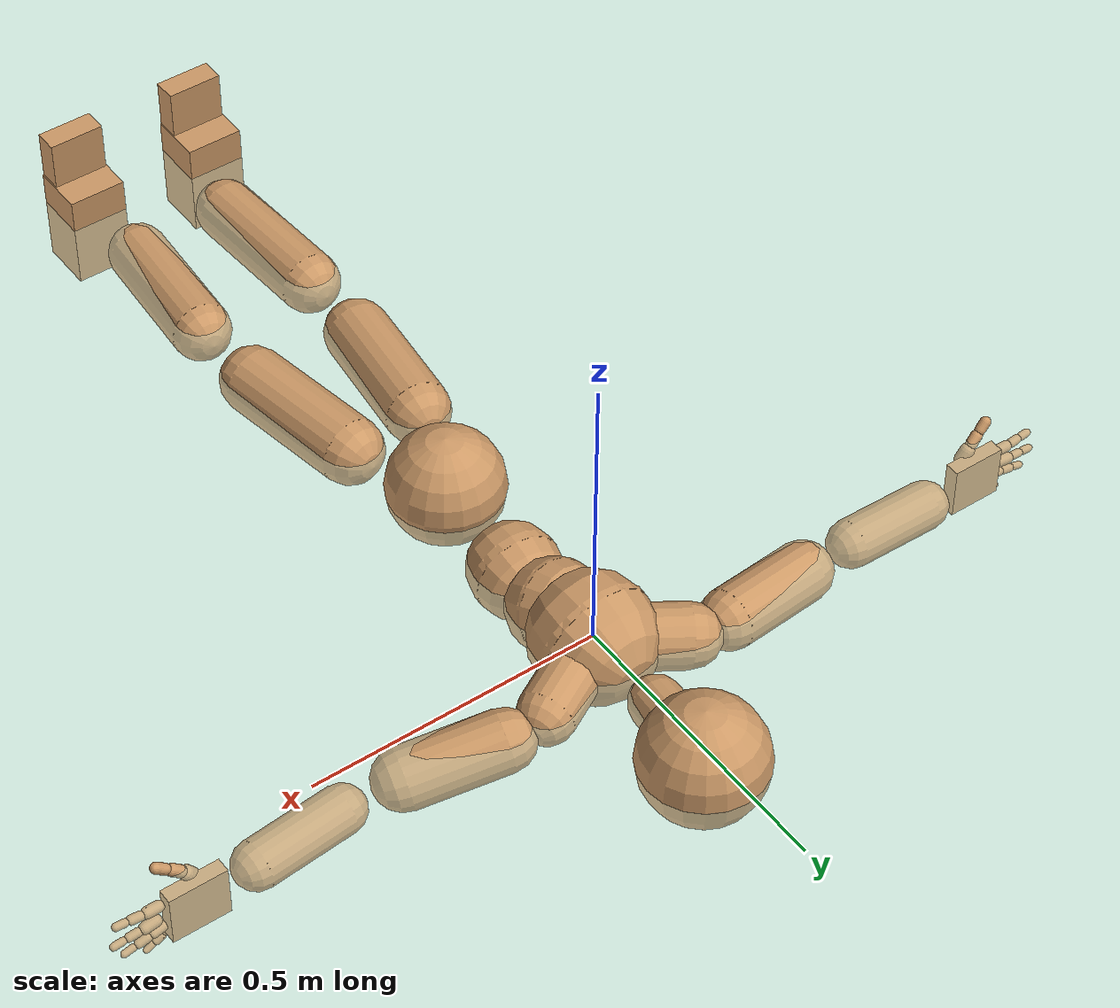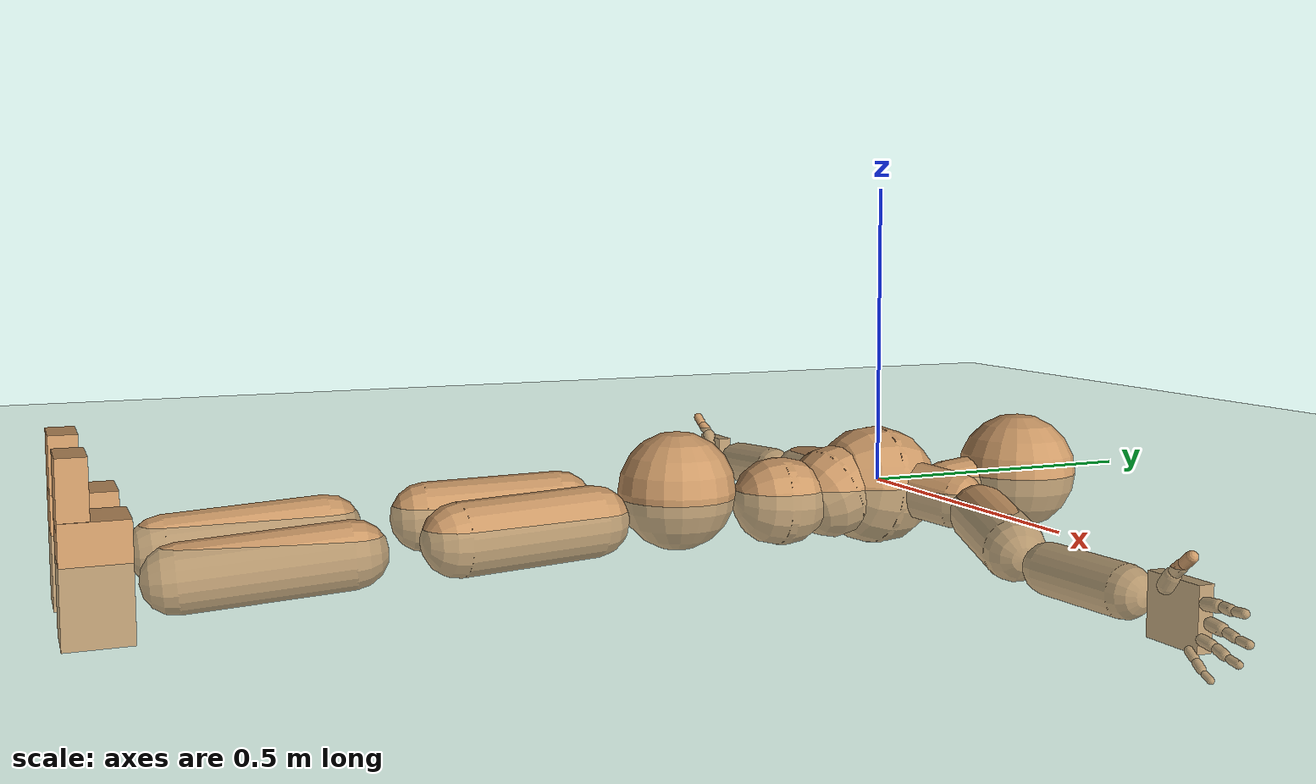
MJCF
<mujoco model="humanoid">
  <compiler coordinate="local"/>
  <default>
    <joint damping="0.0" armature="0.01" stiffness="0.0" limited="true"/>
    <geom conaffinity="1" condim="3" contype="7" margin="0.001" rgba="0.8 0.6 .4 1"/>
  </default>
  <asset>
    <texture type="skybox" builtin="gradient" rgb1=".4 .5 .6" rgb2="0 0 0" width="100" height="100"/>
    <texture builtin="flat" height="1278" mark="cross" markrgb="1 1 1" name="texgeom" random="0.01" rgb1="0.8 0.6 0.4" rgb2="0.8 0.6 0.4" type="cube" width="127"/>
    <texture builtin="checker" height="100" name="texplane" rgb1="0 0 0" rgb2="0.8 0.8 0.8" type="2d" width="100"/>
    <material name="MatPlane" reflectance="0.5" shininess="1" specular="1" texrepeat="60 60" texture="texplane"/>
    <material name="geom" texture="texgeom" texuniform="true"/>
  </asset>
  <worldbody>
    <light cutoff="100" diffuse="1 1 1" dir="-0 0 -1.3" directional="true" exponent="1" pos="0 0 1.3" specular=".1 .1 .1"/>
    <geom conaffinity="1" condim="3" name="floor" pos="0 0 0" rgba="0.8 0.9 0.8 1" size="100 100 .2" type="plane" material="MatPlane"/>
    <body name="Pelvis" pos="0.0027 -0.3825 0.0077">
      <freejoint name="Pelvis"/>
      <geom type="sphere" contype="1" conaffinity="1" density="4629.6296296296305" size="0.0973" pos="0.0000 0.0000 0.0000" name="Pelvis"/>
      <body name="L_Hip" pos="0.0543 -0.0955 -0.0248">
        <joint name="L_Hip_x" type="hinge" pos="0 0 0" axis="1 0 0" user="250 2.5 1 500 10 2" armature="0.01" range="-90.0000 90.0000" damping="0" stiffness="0"/>
        <joint name="L_Hip_y" type="hinge" pos="0 0 0" axis="0 1 0" user="250 2.5 1 500 10 2" armature="0.01" range="-90.0000 90.0000" damping="0" stiffness="0"/>
        <joint name="L_Hip_z" type="hinge" pos="0 0 0" axis="0 0 1" user="250 2.5 1 500 10 2" armature="0.01" range="-90.0000 90.0000" damping="0" stiffness="0"/>
        <geom type="capsule" contype="1" conaffinity="1" density="2040.816327" fromto="0.0116 -0.0756 -0.0013 0.0466 -0.3026 -0.0051" size="0.0566" name="L_Hip"/>
        <body name="L_Knee" pos="0.0582 -0.3782 -0.0064">
          <joint name="L_Knee_x" type="hinge" pos="0 0 0" axis="1 0 0" user="250 2.5 1 500 10 2" armature="0.01" range="-180.0000 180.0000" damping="0" stiffness="0"/>
          <joint name="L_Knee_y" type="hinge" pos="0 0 0" axis="0 1 0" user="250 2.5 1 500 10 2" armature="0.01" range="-5.6250 5.6250" damping="0" stiffness="0"/>
          <joint name="L_Knee_z" type="hinge" pos="0 0 0" axis="0 0 1" user="250 2.5 1 500 10 2" armature="0.01" range="-5.6250 5.6250" damping="0" stiffness="0"/>
          <geom type="capsule" contype="1" conaffinity="1" density="1234.567901" fromto="-0.0082 -0.0805 -0.0061 -0.0327 -0.3219 -0.0242" size="0.0512" name="L_Knee"/>
          <body name="L_Ankle" pos="-0.0409 -0.4023 -0.0303">
            <joint name="L_Ankle_x" type="hinge" pos="0 0 0" axis="1 0 0" user="150 2.5 1 500 10 2" armature="0.01" range="-90.0000 90.0000" damping="0" stiffness="0"/>
            <joint name="L_Ankle_y" type="hinge" pos="0 0 0" axis="0 1 0" user="150 2.5 1 500 10 2" armature="0.01" range="-90.0000 90.0000" damping="0" stiffness="0"/>
            <joint name="L_Ankle_z" type="hinge" pos="0 0 0" axis="0 0 1" user="150 2.5 1 500 10 2" armature="0.01" range="-90.0000 90.0000" damping="0" stiffness="0"/>
            <geom type="box" density="447.149426" pos="0.0408 -0.0293 0.0248" size="0.0501 0.0473 0.0856" quat="1.0000 0.0000 0.0000 0.0000" name="L_Ankle"/>
            <body name="L_Toe" pos="0.0474 -0.0595 0.1199">
              <joint name="L_Toe_x" type="hinge" pos="0 0 0" axis="1 0 0" user="150 1 1 500 1 1" armature="0.01" range="-90.0000 90.0000" damping="0" stiffness="0"/>
              <joint name="L_Toe_y" type="hinge" pos="0 0 0" axis="0 1 0" user="150 1 1 500 1 1" armature="0.01" range="-45.0000 45.0000" damping="0" stiffness="0"/>
              <joint name="L_Toe_z" type="hinge" pos="0 0 0" axis="0 0 1" user="150 1 1 500 1 1" armature="0.01" range="-45.0000 45.0000" damping="0" stiffness="0"/>
              <geom type="box" density="424.313321" pos="-0.0066 0.0037 0.0262" size="0.0481 0.0208 0.0502" quat="1.0000 0.0000 0.0000 0.0000" name="L_Toe"/>
            </body>
          </body>
        </body>
      </body>
      <body name="R_Hip" pos="-0.0591 -0.1079 -0.0198">
        <joint name="R_Hip_x" type="hinge" pos="0 0 0" axis="1 0 0" user="250 2.5 1 500 10 2" armature="0.01" range="-90.0000 90.0000" damping="0" stiffness="0"/>
        <joint name="R_Hip_y" type="hinge" pos="0 0 0" axis="0 1 0" user="250 2.5 1 500 10 2" armature="0.01" range="-90.0000 90.0000" damping="0" stiffness="0"/>
        <joint name="R_Hip_z" type="hinge" pos="0 0 0" axis="0 0 1" user="250 2.5 1 500 10 2" armature="0.01" range="-90.0000 90.0000" damping="0" stiffness="0"/>
        <geom type="capsule" contype="1" conaffinity="1" density="2040.816327" fromto="-0.0096 -0.0721 -0.0028 -0.0383 -0.2883 -0.0110" size="0.0558" name="R_Hip"/>
        <body name="R_Knee" pos="-0.0478 -0.3603 -0.0138">
          <joint name="R_Knee_x" type="hinge" pos="0 0 0" axis="1 0 0" user="250 2.5 1 500 10 2" armature="0.01" range="-180.0000 180.0000" damping="0" stiffness="0"/>
          <joint name="R_Knee_y" type="hinge" pos="0 0 0" axis="0 1 0" user="250 2.5 1 500 10 2" armature="0.01" range="-5.6250 5.6250" damping="0" stiffness="0"/>
          <joint name="R_Knee_z" type="hinge" pos="0 0 0" axis="0 0 1" user="250 2.5 1 500 10 2" armature="0.01" range="-5.6250 5.6250" damping="0" stiffness="0"/>
          <geom type="capsule" contype="1" conaffinity="1" density="1234.567901" fromto="0.0027 -0.0821 -0.0038 0.0109 -0.3284 -0.0152" size="0.0527" name="R_Knee"/>
          <body name="R_Ankle" pos="0.0136 -0.4105 -0.019">
            <joint name="R_Ankle_x" type="hinge" pos="0 0 0" axis="1 0 0" user="150 1 1 500 10 2" armature="0.01" range="-90.0000 90.0000" damping="0" stiffness="0"/>
            <joint name="R_Ankle_y" type="hinge" pos="0 0 0" axis="0 1 0" user="150 1 1 500 10 2" armature="0.01" range="-90.0000 90.0000" damping="0" stiffness="0"/>
            <joint name="R_Ankle_z" type="hinge" pos="0 0 0" axis="0 0 1" user="150 1 1 500 10 2" armature="0.01" range="-90.0000 90.0000" damping="0" stiffness="0"/>
            <geom type="box" density="447.145262" pos="-0.0245 -0.0267 0.0158" size="0.0501 0.0473 0.0856" quat="1.0000 0.0000 0.0000 0.0000" name="R_Ankle"/>
            <body name="R_Toe" pos="-0.0391 -0.0597 0.1208">
              <joint name="R_Toe_x" type="hinge" pos="0 0 0" axis="1 0 0" user="150 1 1 500 1 1" armature="0.01" range="-90.0000 90.0000" damping="0" stiffness="0"/>
              <joint name="R_Toe_y" type="hinge" pos="0 0 0" axis="0 1 0" user="150 1 1 500 1 1" armature="0.01" range="-45.0000 45.0000" damping="0" stiffness="0"/>
              <joint name="R_Toe_z" type="hinge" pos="0 0 0" axis="0 0 1" user="150 1 1 500 1 1" armature="0.01" range="-45.0000 45.0000" damping="0" stiffness="0"/>
              <geom type="box" density="424.331132" pos="0.0147 0.0066 0.0163" size="0.0481 0.0208 0.0502" quat="1.0000 0.0000 0.0000 0.0000" name="R_Toe"/>
            </body>
          </body>
        </body>
      </body>
      <body name="Torso" pos="-0.0021 0.1145 -0.0283">
        <joint name="Torso_x" type="hinge" pos="0 0 0" axis="1 0 0" user="500 5 1 500 10 2" armature="0.01" range="-60.0000 60.0000" damping="0" stiffness="0"/>
        <joint name="Torso_y" type="hinge" pos="0 0 0" axis="0 1 0" user="500 5 1 500 10 2" armature="0.01" range="-60.0000 60.0000" damping="0" stiffness="0"/>
        <joint name="Torso_z" type="hinge" pos="0 0 0" axis="0 0 1" user="500 5 1 500 10 2" armature="0.01" range="-60.0000 60.0000" damping="0" stiffness="0"/>
        <geom type="capsule" contype="1" conaffinity="1" density="2040.816327" fromto="0.0040 0.0666 -0.0022 0.0049 0.0814 -0.0027" size="0.0737" name="Torso"/>
        <body name="Spine" pos="0.009 0.148 -0.0049">
          <joint name="Spine_x" type="hinge" pos="0 0 0" axis="1 0 0" user="500 5 1 500 10 2" armature="0.01" range="-60.0000 60.0000" damping="0" stiffness="0"/>
          <joint name="Spine_y" type="hinge" pos="0 0 0" axis="0 1 0" user="500 5 1 500 10 2" armature="0.01" range="-60.0000 60.0000" damping="0" stiffness="0"/>
          <joint name="Spine_z" type="hinge" pos="0 0 0" axis="0 0 1" user="500 5 1 500 10 2" armature="0.01" range="-60.0000 60.0000" damping="0" stiffness="0"/>
          <geom type="capsule" contype="1" conaffinity="1" density="2040.816327" fromto="-0.0050 0.0257 0.0106 -0.0061 0.0314 0.0129" size="0.077" name="Spine"/>
          <body name="Chest" pos="-0.0112 0.0572 0.0235">
            <joint name="Chest_x" type="hinge" pos="0 0 0" axis="1 0 0" user="500 5 1 500 10 2" armature="0.01" range="-60.0000 60.0000" damping="0" stiffness="0"/>
            <joint name="Chest_y" type="hinge" pos="0 0 0" axis="0 1 0" user="500 5 1 500 10 2" armature="0.01" range="-60.0000 60.0000" damping="0" stiffness="0"/>
            <joint name="Chest_z" type="hinge" pos="0 0 0" axis="0 0 1" user="500 5 1 500 10 2" armature="0.01" range="-60.0000 60.0000" damping="0" stiffness="0"/>
            <geom type="capsule" contype="1" conaffinity="1" density="2040.816327" fromto="-0.0019 0.0518 -0.0063 -0.0024 0.0633 -0.0077" size="0.101" name="Chest"/>
            <body name="Neck" pos="-0.0118 0.1709 -0.0256">
              <joint name="Neck_x" type="hinge" pos="0 0 0" axis="1 0 0" user="150 1 1 250 50 4" armature="0.01" range="-180.0000 180.0000" damping="0" stiffness="0"/>
              <joint name="Neck_y" type="hinge" pos="0 0 0" axis="0 1 0" user="150 1 1 250 50 4" armature="0.01" range="-180.0000 180.0000" damping="0" stiffness="0"/>
              <joint name="Neck_z" type="hinge" pos="0 0 0" axis="0 0 1" user="150 1 1 250 50 4" armature="0.01" range="-180.0000 180.0000" damping="0" stiffness="0"/>
              <geom type="capsule" contype="1" conaffinity="1" density="1000" fromto="0.0050 0.0348 0.0052 0.0199 0.1391 0.0209" size="0.0431" name="Neck"/>
              <body name="Head" pos="0.0248 0.1739 0.0261">
                <joint name="Head_x" type="hinge" pos="0 0 0" axis="1 0 0" user="150 1 1 250 50 4" armature="0.01" range="-90.0000 90.0000" damping="0" stiffness="0"/>
                <joint name="Head_y" type="hinge" pos="0 0 0" axis="0 1 0" user="150 1 1 250 50 4" armature="0.01" range="-90.0000 90.0000" damping="0" stiffness="0"/>
                <joint name="Head_z" type="hinge" pos="0 0 0" axis="0 0 1" user="150 1 1 250 50 4" armature="0.01" range="-90.0000 90.0000" damping="0" stiffness="0"/>
                <geom type="sphere" contype="1" conaffinity="1" density="1000" size="0.1027" pos="0.0000 0.0000 0.0000" name="Head"/>
              </body>
            </body>
            <body name="L_Thorax" pos="0.0455 0.0875 -0.0051">
              <joint name="L_Thorax_x" type="hinge" pos="0 0 0" axis="1 0 0" user="200 2 1 500 50 4" armature="0.01" range="-180.0000 180.0000" damping="0" stiffness="0"/>
              <joint name="L_Thorax_y" type="hinge" pos="0 0 0" axis="0 1 0" user="200 2 1 500 50 4" armature="0.01" range="-180.0000 180.0000" damping="0" stiffness="0"/>
              <joint name="L_Thorax_z" type="hinge" pos="0 0 0" axis="0 0 1" user="200 2 1 500 50 4" armature="0.01" range="-180.0000 180.0000" damping="0" stiffness="0"/>
              <geom type="capsule" contype="1" conaffinity="1" density="1000" fromto="0.0233 0.0114 -0.0031 0.0933 0.0455 -0.0125" size="0.0476" name="L_Thorax"/>
              <body name="L_Shoulder" pos="0.1166 0.0569 -0.0156">
                <joint name="L_Shoulder_x" type="hinge" pos="0 0 0" axis="1 0 0" user="200 2 1 500 50 4" armature="0.01" range="-180.0000 180.0000" damping="0" stiffness="0"/>
                <joint name="L_Shoulder_y" type="hinge" pos="0 0 0" axis="0 1 0" user="200 2 1 500 50 4" armature="0.01" range="-180.0000 180.0000" damping="0" stiffness="0"/>
                <joint name="L_Shoulder_z" type="hinge" pos="0 0 0" axis="0 0 1" user="200 2 1 500 50 4" armature="0.01" range="-180.0000 180.0000" damping="0" stiffness="0"/>
                <geom type="capsule" contype="1" conaffinity="1" density="1000" fromto="0.0501 -0.0143 -0.0079 0.2005 -0.0571 -0.0315" size="0.0498" name="L_Shoulder"/>
                <body name="L_Elbow" pos="0.2506 -0.0714 -0.0394">
                  <joint name="L_Elbow_x" type="hinge" pos="0 0 0" axis="1 0 0" user="150 1 1 150 10 2" armature="0.01" range="-720.0000 720.0000" damping="0" stiffness="0"/>
                  <joint name="L_Elbow_y" type="hinge" pos="0 0 0" axis="0 1 0" user="150 1 1 150 10 2" armature="0.01" range="-720.0000 720.0000" damping="0" stiffness="0"/>
                  <joint name="L_Elbow_z" type="hinge" pos="0 0 0" axis="0 0 1" user="150 1 1 150 10 2" armature="0.01" range="-720.0000 720.0000" damping="0" stiffness="0"/>
                  <geom type="capsule" contype="1" conaffinity="1" density="1000" fromto="0.0509 0.0042 -0.0003 0.2035 0.0170 -0.0013" size="0.0395" name="L_Elbow"/>
                  <body name="L_Wrist" pos="0.2544 0.0212 -0.0016">
                    <joint name="L_Wrist_x" type="hinge" pos="0 0 0" axis="1 0 0" user="100 1 1 150 1 1" armature="0.01" range="-180.0000 180.0000" damping="0" stiffness="0"/>
                    <joint name="L_Wrist_y" type="hinge" pos="0 0 0" axis="0 1 0" user="100 1 1 150 1 1" armature="0.01" range="-180.0000 180.0000" damping="0" stiffness="0"/>
                    <joint name="L_Wrist_z" type="hinge" pos="0 0 0" axis="0 0 1" user="100 1 1 150 1 1" armature="0.01" range="-180.0000 180.0000" damping="0" stiffness="0"/>
                    <geom type="box" density="1211.532379" pos="0.0529 -0.0016 -0.0029" size="0.0488 0.0124 0.0462" quat="1.0000 0.0000 0.0000 0.0000" name="L_Wrist"/>
                    <body name="L_Index1" pos="0.1028 -0.0086 0.0195">
                      <joint name="L_Index1_x" type="hinge" pos="0 0 0" axis="1 0 0" user="100 10 1 150" armature="0.01" range="-180.0000 180.0000" damping="0" stiffness="0"/>
                      <joint name="L_Index1_y" type="hinge" pos="0 0 0" axis="0 1 0" user="100 10 1 150" armature="0.01" range="-180.0000 180.0000" damping="0" stiffness="0"/>
                      <joint name="L_Index1_z" type="hinge" pos="0 0 0" axis="0 0 1" user="100 10 1 150" armature="0.01" range="-180.0000 180.0000" damping="0" stiffness="0"/>
                      <geom type="capsule" contype="1" conaffinity="1" density="1000" fromto="0.0064 0.0005 0.0006 0.0257 0.0018 0.0022" size="0.0093" name="L_Index1"/>
                      <body name="L_Index2" pos="0.0321 0.0023 0.0028">
                        <joint name="L_Index2_x" type="hinge" pos="0 0 0" axis="1 0 0" user="100 10 1 150" armature="0.01" range="-180.0000 180.0000" damping="0" stiffness="0"/>
                        <joint name="L_Index2_y" type="hinge" pos="0 0 0" axis="0 1 0" user="100 10 1 150" armature="0.01" range="-180.0000 180.0000" damping="0" stiffness="0"/>
                        <joint name="L_Index2_z" type="hinge" pos="0 0 0" axis="0 0 1" user="100 10 1 150" armature="0.01" range="-180.0000 180.0000" damping="0" stiffness="0"/>
                        <geom type="capsule" contype="1" conaffinity="1" density="1000" fromto="0.0045 -0.0005 -0.0000 0.0181 -0.0020 -0.0002" size="0.0077" name="L_Index2"/>
                        <body name="L_Index3" pos="0.0226 -0.0025 -0.0002">
                          <joint name="L_Index3_x" type="hinge" pos="0 0 0" axis="1 0 0" user="100 10 1 150" armature="0.01" range="-180.0000 180.0000" damping="0" stiffness="0"/>
                          <joint name="L_Index3_y" type="hinge" pos="0 0 0" axis="0 1 0" user="100 10 1 150" armature="0.01" range="-180.0000 180.0000" damping="0" stiffness="0"/>
                          <joint name="L_Index3_z" type="hinge" pos="0 0 0" axis="0 0 1" user="100 10 1 150" armature="0.01" range="-180.0000 180.0000" damping="0" stiffness="0"/>
                          <geom type="capsule" contype="1" conaffinity="1" density="1000" fromto="0.0049 -0.0001 0.0004 0.0197 -0.0004 0.0014" size="0.0065" name="L_Index3"/>
                        </body>
                      </body>
                    </body>
                    <body name="L_Middle1" pos="0.1104 -0.0064 -0.0041">
                      <joint name="L_Middle1_x" type="hinge" pos="0 0 0" axis="1 0 0" user="100 10 1 150" armature="0.01" range="-180.0000 180.0000" damping="0" stiffness="0"/>
                      <joint name="L_Middle1_y" type="hinge" pos="0 0 0" axis="0 1 0" user="100 10 1 150" armature="0.01" range="-180.0000 180.0000" damping="0" stiffness="0"/>
                      <joint name="L_Middle1_z" type="hinge" pos="0 0 0" axis="0 0 1" user="100 10 1 150" armature="0.01" range="-180.0000 180.0000" damping="0" stiffness="0"/>
                      <geom type="capsule" contype="1" conaffinity="1" density="1000" fromto="0.0061 0.0001 -0.0008 0.0246 0.0006 -0.0033" size="0.0095" name="L_Middle1"/>
                      <body name="L_Middle2" pos="0.0307 0.0007 -0.0041">
                        <joint name="L_Middle2_x" type="hinge" pos="0 0 0" axis="1 0 0" user="100 10 1 150" armature="0.01" range="-180.0000 180.0000" damping="0" stiffness="0"/>
                        <joint name="L_Middle2_y" type="hinge" pos="0 0 0" axis="0 1 0" user="100 10 1 150" armature="0.01" range="-180.0000 180.0000" damping="0" stiffness="0"/>
                        <joint name="L_Middle2_z" type="hinge" pos="0 0 0" axis="0 0 1" user="100 10 1 150" armature="0.01" range="-180.0000 180.0000" damping="0" stiffness="0"/>
                        <geom type="capsule" contype="1" conaffinity="1" density="1000" fromto="0.0047 -0.0004 -0.0008 0.0189 -0.0016 -0.0034" size="0.0071" name="L_Middle2"/>
                        <body name="L_Middle3" pos="0.0236 -0.002 -0.0042">
                          <joint name="L_Middle3_x" type="hinge" pos="0 0 0" axis="1 0 0" user="100 10 1 150" armature="0.01" range="-180.0000 180.0000" damping="0" stiffness="0"/>
                          <joint name="L_Middle3_y" type="hinge" pos="0 0 0" axis="0 1 0" user="100 10 1 150" armature="0.01" range="-180.0000 180.0000" damping="0" stiffness="0"/>
                          <joint name="L_Middle3_z" type="hinge" pos="0 0 0" axis="0 0 1" user="100 10 1 150" armature="0.01" range="-180.0000 180.0000" damping="0" stiffness="0"/>
                          <geom type="capsule" contype="1" conaffinity="1" density="1000" fromto="0.0051 -0.0000 -0.0004 0.0205 -0.0000 -0.0018" size="0.0062" name="L_Middle3"/>
                        </body>
                      </body>
                    </body>
                    <body name="L_Pinky1" pos="0.0853 -0.0146 -0.0439">
                      <joint name="L_Pinky1_x" type="hinge" pos="0 0 0" axis="1 0 0" user="100 10 1 150" armature="0.01" range="-180.0000 180.0000" damping="0" stiffness="0"/>
                      <joint name="L_Pinky1_y" type="hinge" pos="0 0 0" axis="0 1 0" user="100 10 1 150" armature="0.01" range="-180.0000 180.0000" damping="0" stiffness="0"/>
                      <joint name="L_Pinky1_z" type="hinge" pos="0 0 0" axis="0 0 1" user="100 10 1 150" armature="0.01" range="-180.0000 180.0000" damping="0" stiffness="0"/>
                      <geom type="capsule" contype="1" conaffinity="1" density="1000" fromto="0.0032 -0.0002 -0.0024 0.0128 -0.0009 -0.0095" size="0.0068" name="L_Pinky1"/>
                      <body name="L_Pinky2" pos="0.016 -0.0012 -0.0119">
                        <joint name="L_Pinky2_x" type="hinge" pos="0 0 0" axis="1 0 0" user="100 10 1 150" armature="0.01" range="-180.0000 180.0000" damping="0" stiffness="0"/>
                        <joint name="L_Pinky2_y" type="hinge" pos="0 0 0" axis="0 1 0" user="100 10 1 150" armature="0.01" range="-180.0000 180.0000" damping="0" stiffness="0"/>
                        <joint name="L_Pinky2_z" type="hinge" pos="0 0 0" axis="0 0 1" user="100 10 1 150" armature="0.01" range="-180.0000 180.0000" damping="0" stiffness="0"/>
                        <geom type="capsule" contype="1" conaffinity="1" density="1000" fromto="0.0032 -0.0004 -0.0022 0.0126 -0.0014 -0.0089" size="0.0065" name="L_Pinky2"/>
                        <body name="L_Pinky3" pos="0.0158 -0.0018 -0.0111">
                          <joint name="L_Pinky3_x" type="hinge" pos="0 0 0" axis="1 0 0" user="100 10 1 150" armature="0.01" range="-180.0000 180.0000" damping="0" stiffness="0"/>
                          <joint name="L_Pinky3_y" type="hinge" pos="0 0 0" axis="0 1 0" user="100 10 1 150" armature="0.01" range="-180.0000 180.0000" damping="0" stiffness="0"/>
                          <joint name="L_Pinky3_z" type="hinge" pos="0 0 0" axis="0 0 1" user="100 10 1 150" armature="0.01" range="-180.0000 180.0000" damping="0" stiffness="0"/>
                          <geom type="capsule" contype="1" conaffinity="1" density="1000" fromto="0.0036 0.0000 -0.0018 0.0142 0.0002 -0.0073" size="0.005" name="L_Pinky3"/>
                        </body>
                      </body>
                    </body>
                    <body name="L_Ring1" pos="0.0986 -0.0093 -0.0274">
                      <joint name="L_Ring1_x" type="hinge" pos="0 0 0" axis="1 0 0" user="100 10 1 150" armature="0.01" range="-180.0000 180.0000" damping="0" stiffness="0"/>
                      <joint name="L_Ring1_y" type="hinge" pos="0 0 0" axis="0 1 0" user="100 10 1 150" armature="0.01" range="-180.0000 180.0000" damping="0" stiffness="0"/>
                      <joint name="L_Ring1_z" type="hinge" pos="0 0 0" axis="0 0 1" user="100 10 1 150" armature="0.01" range="-180.0000 180.0000" damping="0" stiffness="0"/>
                      <geom type="capsule" contype="1" conaffinity="1" density="1000" fromto="0.0057 0.0003 -0.0011 0.0227 0.0012 -0.0042" size="0.0081" name="L_Ring1"/>
                      <body name="L_Ring2" pos="0.0284 0.0015 -0.0053">
                        <joint name="L_Ring2_x" type="hinge" pos="0 0 0" axis="1 0 0" user="100 10 1 150" armature="0.01" range="-180.0000 180.0000" damping="0" stiffness="0"/>
                        <joint name="L_Ring2_y" type="hinge" pos="0 0 0" axis="0 1 0" user="100 10 1 150" armature="0.01" range="-180.0000 180.0000" damping="0" stiffness="0"/>
                        <joint name="L_Ring2_z" type="hinge" pos="0 0 0" axis="0 0 1" user="100 10 1 150" armature="0.01" range="-180.0000 180.0000" damping="0" stiffness="0"/>
                        <geom type="capsule" contype="1" conaffinity="1" density="1000" fromto="0.0046 -0.0003 -0.0014 0.0184 -0.0012 -0.0057" size="0.0075" name="L_Ring2"/>
                        <body name="L_Ring3" pos="0.023 -0.0015 -0.0071">
                          <joint name="L_Ring3_x" type="hinge" pos="0 0 0" axis="1 0 0" user="100 10 1 150" armature="0.01" range="-180.0000 180.0000" damping="0" stiffness="0"/>
                          <joint name="L_Ring3_y" type="hinge" pos="0 0 0" axis="0 1 0" user="100 10 1 150" armature="0.01" range="-180.0000 180.0000" damping="0" stiffness="0"/>
                          <joint name="L_Ring3_z" type="hinge" pos="0 0 0" axis="0 0 1" user="100 10 1 150" armature="0.01" range="-180.0000 180.0000" damping="0" stiffness="0"/>
                          <geom type="capsule" contype="1" conaffinity="1" density="1000" fromto="0.0050 0.0001 -0.0010 0.0200 0.0004 -0.0041" size="0.0058" name="L_Ring3"/>
                        </body>
                      </body>
                    </body>
                    <body name="L_Thumb1" pos="0.0412 -0.0185 0.0259">
                      <joint name="L_Thumb1_x" type="hinge" pos="0 0 0" axis="1 0 0" user="100 10 1 150" armature="0.01" range="-180.0000 180.0000" damping="0" stiffness="0"/>
                      <joint name="L_Thumb1_y" type="hinge" pos="0 0 0" axis="0 1 0" user="100 10 1 150" armature="0.01" range="-180.0000 180.0000" damping="0" stiffness="0"/>
                      <joint name="L_Thumb1_z" type="hinge" pos="0 0 0" axis="0 0 1" user="100 10 1 150" armature="0.01" range="-180.0000 180.0000" damping="0" stiffness="0"/>
                      <geom type="capsule" contype="1" conaffinity="1" density="1000" fromto="0.0035 0.0002 0.0051 0.0139 0.0008 0.0202" size="0.0122" name="L_Thumb1"/>
                      <body name="L_Thumb2" pos="0.0174 0.001 0.0253">
                        <joint name="L_Thumb2_x" type="hinge" pos="0 0 0" axis="1 0 0" user="100 10 1 150" armature="0.01" range="-180.0000 180.0000" damping="0" stiffness="0"/>
                        <joint name="L_Thumb2_y" type="hinge" pos="0 0 0" axis="0 1 0" user="100 10 1 150" armature="0.01" range="-180.0000 180.0000" damping="0" stiffness="0"/>
                        <joint name="L_Thumb2_z" type="hinge" pos="0 0 0" axis="0 0 1" user="100 10 1 150" armature="0.01" range="-180.0000 180.0000" damping="0" stiffness="0"/>
                        <geom type="capsule" contype="1" conaffinity="1" density="1000" fromto="0.0042 -0.0010 0.0031 0.0168 -0.0040 0.0124" size="0.0097" name="L_Thumb2"/>
                        <body name="L_Thumb3" pos="0.0211 -0.005 0.0155">
                          <joint name="L_Thumb3_x" type="hinge" pos="0 0 0" axis="1 0 0" user="100 10 1 150" armature="0.01" range="-180.0000 180.0000" damping="0" stiffness="0"/>
                          <joint name="L_Thumb3_y" type="hinge" pos="0 0 0" axis="0 1 0" user="100 10 1 150" armature="0.01" range="-180.0000 180.0000" damping="0" stiffness="0"/>
                          <joint name="L_Thumb3_z" type="hinge" pos="0 0 0" axis="0 0 1" user="100 10 1 150" armature="0.01" range="-180.0000 180.0000" damping="0" stiffness="0"/>
                          <geom type="capsule" contype="1" conaffinity="1" density="1000" fromto="0.0046 -0.0006 0.0035 0.0184 -0.0024 0.0140" size="0.0088" name="L_Thumb3"/>
                        </body>
                      </body>
                    </body>
                  </body>
                </body>
              </body>
            </body>
            <body name="R_Thorax" pos="-0.0467 0.0868 -0.011">
              <joint name="R_Thorax_x" type="hinge" pos="0 0 0" axis="1 0 0" user="200 2 1 150 10 2" armature="0.01" range="-180.0000 180.0000" damping="0" stiffness="0"/>
              <joint name="R_Thorax_y" type="hinge" pos="0 0 0" axis="0 1 0" user="200 2 1 150 10 2" armature="0.01" range="-180.0000 180.0000" damping="0" stiffness="0"/>
              <joint name="R_Thorax_z" type="hinge" pos="0 0 0" axis="0 0 1" user="200 2 1 150 10 2" armature="0.01" range="-180.0000 180.0000" damping="0" stiffness="0"/>
              <geom type="capsule" contype="1" conaffinity="1" density="1000" fromto="-0.0202 0.0105 -0.0023 -0.0807 0.0421 -0.0094" size="0.0523" name="R_Thorax"/>
              <body name="R_Shoulder" pos="-0.1009 0.0527 -0.0117">
                <joint name="R_Shoulder_x" type="hinge" pos="0 0 0" axis="1 0 0" user="200 2 1 250 10 2" armature="0.01" range="-180.0000 180.0000" damping="0" stiffness="0"/>
                <joint name="R_Shoulder_y" type="hinge" pos="0 0 0" axis="0 1 0" user="200 2 1 250 10 2" armature="0.01" range="-180.0000 180.0000" damping="0" stiffness="0"/>
                <joint name="R_Shoulder_z" type="hinge" pos="0 0 0" axis="0 0 1" user="200 2 1 250 10 2" armature="0.01" range="-180.0000 180.0000" damping="0" stiffness="0"/>
                <geom type="capsule" contype="1" conaffinity="1" density="1000" fromto="-0.0534 -0.0074 -0.0051 -0.2137 -0.0295 -0.0202" size="0.0497" name="R_Shoulder"/>
                <body name="R_Elbow" pos="-0.2671 -0.0368 -0.0253">
                  <joint name="R_Elbow_x" type="hinge" pos="0 0 0" axis="1 0 0" user="150 1 1 150 10 2" armature="0.01" range="-720.0000 720.0000" damping="0" stiffness="0"/>
                  <joint name="R_Elbow_y" type="hinge" pos="0 0 0" axis="0 1 0" user="150 1 1 150 10 2" armature="0.01" range="-720.0000 720.0000" damping="0" stiffness="0"/>
                  <joint name="R_Elbow_z" type="hinge" pos="0 0 0" axis="0 0 1" user="150 1 1 150 10 2" armature="0.01" range="-720.0000 720.0000" damping="0" stiffness="0"/>
                  <geom type="capsule" contype="1" conaffinity="1" density="1000" fromto="-0.0503 -0.0010 -0.0028 -0.2011 -0.0041 -0.0114" size="0.0398" name="R_Elbow"/>
                  <body name="R_Wrist" pos="-0.2514 -0.0051 -0.0142">
                    <joint name="R_Wrist_x" type="hinge" pos="0 0 0" axis="1 0 0" user="100 1 1 150 1 1" armature="0.01" range="-180.0000 180.0000" damping="0" stiffness="0"/>
                    <joint name="R_Wrist_y" type="hinge" pos="0 0 0" axis="0 1 0" user="100 1 1 150 1 1" armature="0.01" range="-180.0000 180.0000" damping="0" stiffness="0"/>
                    <joint name="R_Wrist_z" type="hinge" pos="0 0 0" axis="0 0 1" user="100 1 1 150 1 1" armature="0.01" range="-180.0000 180.0000" damping="0" stiffness="0"/>
                    <geom type="box" density="1239.091775" pos="-0.0541 -0.0048 -0.0024" size="0.046 0.0124 0.0462" quat="1.0000 0.0000 0.0000 0.0000" name="R_Wrist"/>
                    <body name="R_Index1" pos="-0.1008 -0.0118 0.0201">
                      <joint name="R_Index1_x" type="hinge" pos="0 0 0" axis="1 0 0" user="100 10 1 150" armature="0.01" range="-180.0000 180.0000" damping="0" stiffness="0"/>
                      <joint name="R_Index1_y" type="hinge" pos="0 0 0" axis="0 1 0" user="100 10 1 150" armature="0.01" range="-180.0000 180.0000" damping="0" stiffness="0"/>
                      <joint name="R_Index1_z" type="hinge" pos="0 0 0" axis="0 0 1" user="100 10 1 150" armature="0.01" range="-180.0000 180.0000" damping="0" stiffness="0"/>
                      <geom type="capsule" contype="1" conaffinity="1" density="1000" fromto="-0.0064 0.0005 0.0006 -0.0257 0.0018 0.0022" size="0.0093" name="R_Index1"/>
                      <body name="R_Index2" pos="-0.0321 0.0023 0.0028">
                        <joint name="R_Index2_x" type="hinge" pos="0 0 0" axis="1 0 0" user="100 10 1 150" armature="0.01" range="-180.0000 180.0000" damping="0" stiffness="0"/>
                        <joint name="R_Index2_y" type="hinge" pos="0 0 0" axis="0 1 0" user="100 10 1 150" armature="0.01" range="-180.0000 180.0000" damping="0" stiffness="0"/>
                        <joint name="R_Index2_z" type="hinge" pos="0 0 0" axis="0 0 1" user="100 10 1 150" armature="0.01" range="-180.0000 180.0000" damping="0" stiffness="0"/>
                        <geom type="capsule" contype="1" conaffinity="1" density="1000" fromto="-0.0045 -0.0005 -0.0000 -0.0181 -0.0020 -0.0002" size="0.0077" name="R_Index2"/>
                        <body name="R_Index3" pos="-0.0226 -0.0025 -0.0002">
                          <joint name="R_Index3_x" type="hinge" pos="0 0 0" axis="1 0 0" user="100 10 1 150" armature="0.01" range="-180.0000 180.0000" damping="0" stiffness="0"/>
                          <joint name="R_Index3_y" type="hinge" pos="0 0 0" axis="0 1 0" user="100 10 1 150" armature="0.01" range="-180.0000 180.0000" damping="0" stiffness="0"/>
                          <joint name="R_Index3_z" type="hinge" pos="0 0 0" axis="0 0 1" user="100 10 1 150" armature="0.01" range="-180.0000 180.0000" damping="0" stiffness="0"/>
                          <geom type="capsule" contype="1" conaffinity="1" density="1000" fromto="-0.0041 -0.0001 0.0004 -0.0165 -0.0004 0.0014" size="0.0068" name="R_Index3"/>
                        </body>
                      </body>
                    </body>
                    <body name="R_Middle1" pos="-0.1084 -0.0096 -0.0035">
                      <joint name="R_Middle1_x" type="hinge" pos="0 0 0" axis="1 0 0" user="100 10 1 150" armature="0.01" range="-180.0000 180.0000" damping="0" stiffness="0"/>
                      <joint name="R_Middle1_y" type="hinge" pos="0 0 0" axis="0 1 0" user="100 10 1 150" armature="0.01" range="-180.0000 180.0000" damping="0" stiffness="0"/>
                      <joint name="R_Middle1_z" type="hinge" pos="0 0 0" axis="0 0 1" user="100 10 1 150" armature="0.01" range="-180.0000 180.0000" damping="0" stiffness="0"/>
                      <geom type="capsule" contype="1" conaffinity="1" density="1000" fromto="-0.0061 0.0001 -0.0008 -0.0246 0.0006 -0.0033" size="0.0095" name="R_Middle1"/>
                      <body name="R_Middle2" pos="-0.0307 0.0007 -0.0041">
                        <joint name="R_Middle2_x" type="hinge" pos="0 0 0" axis="1 0 0" user="100 10 1 150" armature="0.01" range="-180.0000 180.0000" damping="0" stiffness="0"/>
                        <joint name="R_Middle2_y" type="hinge" pos="0 0 0" axis="0 1 0" user="100 10 1 150" armature="0.01" range="-180.0000 180.0000" damping="0" stiffness="0"/>
                        <joint name="R_Middle2_z" type="hinge" pos="0 0 0" axis="0 0 1" user="100 10 1 150" armature="0.01" range="-180.0000 180.0000" damping="0" stiffness="0"/>
                        <geom type="capsule" contype="1" conaffinity="1" density="1000" fromto="-0.0047 -0.0004 -0.0008 -0.0189 -0.0016 -0.0034" size="0.0071" name="R_Middle2"/>
                        <body name="R_Middle3" pos="-0.0236 -0.0021 -0.0042">
                          <joint name="R_Middle3_x" type="hinge" pos="0 0 0" axis="1 0 0" user="100 10 1 150" armature="0.01" range="-180.0000 180.0000" damping="0" stiffness="0"/>
                          <joint name="R_Middle3_y" type="hinge" pos="0 0 0" axis="0 1 0" user="100 10 1 150" armature="0.01" range="-180.0000 180.0000" damping="0" stiffness="0"/>
                          <joint name="R_Middle3_z" type="hinge" pos="0 0 0" axis="0 0 1" user="100 10 1 150" armature="0.01" range="-180.0000 180.0000" damping="0" stiffness="0"/>
                          <geom type="capsule" contype="1" conaffinity="1" density="1000" fromto="-0.0043 -0.0000 -0.0004 -0.0173 -0.0000 -0.0018" size="0.0065" name="R_Middle3"/>
                        </body>
                      </body>
                    </body>
                    <body name="R_Pinky1" pos="-0.0833 -0.0179 -0.0434">
                      <joint name="R_Pinky1_x" type="hinge" pos="0 0 0" axis="1 0 0" user="100 10 1 150" armature="0.01" range="-180.0000 180.0000" damping="0" stiffness="0"/>
                      <joint name="R_Pinky1_y" type="hinge" pos="0 0 0" axis="0 1 0" user="100 10 1 150" armature="0.01" range="-180.0000 180.0000" damping="0" stiffness="0"/>
                      <joint name="R_Pinky1_z" type="hinge" pos="0 0 0" axis="0 0 1" user="100 10 1 150" armature="0.01" range="-180.0000 180.0000" damping="0" stiffness="0"/>
                      <geom type="capsule" contype="1" conaffinity="1" density="1000" fromto="-0.0032 -0.0002 -0.0024 -0.0128 -0.0009 -0.0095" size="0.0068" name="R_Pinky1"/>
                      <body name="R_Pinky2" pos="-0.016 -0.0012 -0.0119">
                        <joint name="R_Pinky2_x" type="hinge" pos="0 0 0" axis="1 0 0" user="100 10 1 150" armature="0.01" range="-180.0000 180.0000" damping="0" stiffness="0"/>
                        <joint name="R_Pinky2_y" type="hinge" pos="0 0 0" axis="0 1 0" user="100 10 1 150" armature="0.01" range="-180.0000 180.0000" damping="0" stiffness="0"/>
                        <joint name="R_Pinky2_z" type="hinge" pos="0 0 0" axis="0 0 1" user="100 10 1 150" armature="0.01" range="-180.0000 180.0000" damping="0" stiffness="0"/>
                        <geom type="capsule" contype="1" conaffinity="1" density="1000" fromto="-0.0032 -0.0004 -0.0022 -0.0126 -0.0014 -0.0089" size="0.0065" name="R_Pinky2"/>
                        <body name="R_Pinky3" pos="-0.0158 -0.0018 -0.0111">
                          <joint name="R_Pinky3_x" type="hinge" pos="0 0 0" axis="1 0 0" user="100 10 1 150" armature="0.01" range="-180.0000 180.0000" damping="0" stiffness="0"/>
                          <joint name="R_Pinky3_y" type="hinge" pos="0 0 0" axis="0 1 0" user="100 10 1 150" armature="0.01" range="-180.0000 180.0000" damping="0" stiffness="0"/>
                          <joint name="R_Pinky3_z" type="hinge" pos="0 0 0" axis="0 0 1" user="100 10 1 150" armature="0.01" range="-180.0000 180.0000" damping="0" stiffness="0"/>
                          <geom type="capsule" contype="1" conaffinity="1" density="1000" fromto="-0.0028 0.0000 -0.0018 -0.0110 0.0002 -0.0073" size="0.0052" name="R_Pinky3"/>
                        </body>
                      </body>
                    </body>
                    <body name="R_Ring1" pos="-0.0966 -0.0125 -0.0269">
                      <joint name="R_Ring1_x" type="hinge" pos="0 0 0" axis="1 0 0" user="100 10 1 150" armature="0.01" range="-180.0000 180.0000" damping="0" stiffness="0"/>
                      <joint name="R_Ring1_y" type="hinge" pos="0 0 0" axis="0 1 0" user="100 10 1 150" armature="0.01" range="-180.0000 180.0000" damping="0" stiffness="0"/>
                      <joint name="R_Ring1_z" type="hinge" pos="0 0 0" axis="0 0 1" user="100 10 1 150" armature="0.01" range="-180.0000 180.0000" damping="0" stiffness="0"/>
                      <geom type="capsule" contype="1" conaffinity="1" density="1000" fromto="-0.0057 0.0003 -0.0011 -0.0227 0.0012 -0.0042" size="0.0081" name="R_Ring1"/>
                      <body name="R_Ring2" pos="-0.0284 0.0015 -0.0053">
                        <joint name="R_Ring2_x" type="hinge" pos="0 0 0" axis="1 0 0" user="100 10 1 150" armature="0.01" range="-180.0000 180.0000" damping="0" stiffness="0"/>
                        <joint name="R_Ring2_y" type="hinge" pos="0 0 0" axis="0 1 0" user="100 10 1 150" armature="0.01" range="-180.0000 180.0000" damping="0" stiffness="0"/>
                        <joint name="R_Ring2_z" type="hinge" pos="0 0 0" axis="0 0 1" user="100 10 1 150" armature="0.01" range="-180.0000 180.0000" damping="0" stiffness="0"/>
                        <geom type="capsule" contype="1" conaffinity="1" density="1000" fromto="-0.0046 -0.0003 -0.0014 -0.0184 -0.0012 -0.0057" size="0.0075" name="R_Ring2"/>
                        <body name="R_Ring3" pos="-0.023 -0.0015 -0.0071">
                          <joint name="R_Ring3_x" type="hinge" pos="0 0 0" axis="1 0 0" user="100 10 1 150" armature="0.01" range="-180.0000 180.0000" damping="0" stiffness="0"/>
                          <joint name="R_Ring3_y" type="hinge" pos="0 0 0" axis="0 1 0" user="100 10 1 150" armature="0.01" range="-180.0000 180.0000" damping="0" stiffness="0"/>
                          <joint name="R_Ring3_z" type="hinge" pos="0 0 0" axis="0 0 1" user="100 10 1 150" armature="0.01" range="-180.0000 180.0000" damping="0" stiffness="0"/>
                          <geom type="capsule" contype="1" conaffinity="1" density="1000" fromto="-0.0042 0.0001 -0.0010 -0.0168 0.0004 -0.0041" size="0.0061" name="R_Ring3"/>
                        </body>
                      </body>
                    </body>
                    <body name="R_Thumb1" pos="-0.0392 -0.0217 0.0265">
                      <joint name="R_Thumb1_x" type="hinge" pos="0 0 0" axis="1 0 0" user="100 10 1 150" armature="0.01" range="-180.0000 180.0000" damping="0" stiffness="0"/>
                      <joint name="R_Thumb1_y" type="hinge" pos="0 0 0" axis="0 1 0" user="100 10 1 150" armature="0.01" range="-180.0000 180.0000" damping="0" stiffness="0"/>
                      <joint name="R_Thumb1_z" type="hinge" pos="0 0 0" axis="0 0 1" user="100 10 1 150" armature="0.01" range="-180.0000 180.0000" damping="0" stiffness="0"/>
                      <geom type="capsule" contype="1" conaffinity="1" density="1000" fromto="-0.0035 0.0002 0.0051 -0.0139 0.0008 0.0202" size="0.0122" name="R_Thumb1"/>
                      <body name="R_Thumb2" pos="-0.0174 0.001 0.0253">
                        <joint name="R_Thumb2_x" type="hinge" pos="0 0 0" axis="1 0 0" user="100 10 1 150" armature="0.01" range="-180.0000 180.0000" damping="0" stiffness="0"/>
                        <joint name="R_Thumb2_y" type="hinge" pos="0 0 0" axis="0 1 0" user="100 10 1 150" armature="0.01" range="-180.0000 180.0000" damping="0" stiffness="0"/>
                        <joint name="R_Thumb2_z" type="hinge" pos="0 0 0" axis="0 0 1" user="100 10 1 150" armature="0.01" range="-180.0000 180.0000" damping="0" stiffness="0"/>
                        <geom type="capsule" contype="1" conaffinity="1" density="1000" fromto="-0.0042 -0.0010 0.0031 -0.0168 -0.0040 0.0124" size="0.0097" name="R_Thumb2"/>
                        <body name="R_Thumb3" pos="-0.0211 -0.005 0.0155">
                          <joint name="R_Thumb3_x" type="hinge" pos="0 0 0" axis="1 0 0" user="100 10 1 150" armature="0.01" range="-180.0000 180.0000" damping="0" stiffness="0"/>
                          <joint name="R_Thumb3_y" type="hinge" pos="0 0 0" axis="0 1 0" user="100 10 1 150" armature="0.01" range="-180.0000 180.0000" damping="0" stiffness="0"/>
                          <joint name="R_Thumb3_z" type="hinge" pos="0 0 0" axis="0 0 1" user="100 10 1 150" armature="0.01" range="-180.0000 180.0000" damping="0" stiffness="0"/>
                          <geom type="capsule" contype="1" conaffinity="1" density="1000" fromto="-0.0038 -0.0006 0.0035 -0.0152 -0.0024 0.0140" size="0.009" name="R_Thumb3"/>
                        </body>
                      </body>
                    </body>
                  </body>
                </body>
              </body>
            </body>
          </body>
        </body>
      </body>
    </body>
  </worldbody>
  <actuator>
    <motor name="L_Hip_x" joint="L_Hip_x" gear="1"/>
    <motor name="L_Hip_y" joint="L_Hip_y" gear="1"/>
    <motor name="L_Hip_z" joint="L_Hip_z" gear="1"/>
    <motor name="L_Knee_x" joint="L_Knee_x" gear="1"/>
    <motor name="L_Knee_y" joint="L_Knee_y" gear="1"/>
    <motor name="L_Knee_z" joint="L_Knee_z" gear="1"/>
    <motor name="L_Ankle_x" joint="L_Ankle_x" gear="1"/>
    <motor name="L_Ankle_y" joint="L_Ankle_y" gear="1"/>
    <motor name="L_Ankle_z" joint="L_Ankle_z" gear="1"/>
    <motor name="L_Toe_x" joint="L_Toe_x" gear="1"/>
    <motor name="L_Toe_y" joint="L_Toe_y" gear="1"/>
    <motor name="L_Toe_z" joint="L_Toe_z" gear="1"/>
    <motor name="R_Hip_x" joint="R_Hip_x" gear="1"/>
    <motor name="R_Hip_y" joint="R_Hip_y" gear="1"/>
    <motor name="R_Hip_z" joint="R_Hip_z" gear="1"/>
    <motor name="R_Knee_x" joint="R_Knee_x" gear="1"/>
    <motor name="R_Knee_y" joint="R_Knee_y" gear="1"/>
    <motor name="R_Knee_z" joint="R_Knee_z" gear="1"/>
    <motor name="R_Ankle_x" joint="R_Ankle_x" gear="1"/>
    <motor name="R_Ankle_y" joint="R_Ankle_y" gear="1"/>
    <motor name="R_Ankle_z" joint="R_Ankle_z" gear="1"/>
    <motor name="R_Toe_x" joint="R_Toe_x" gear="1"/>
    <motor name="R_Toe_y" joint="R_Toe_y" gear="1"/>
    <motor name="R_Toe_z" joint="R_Toe_z" gear="1"/>
    <motor name="Torso_x" joint="Torso_x" gear="1"/>
    <motor name="Torso_y" joint="Torso_y" gear="1"/>
    <motor name="Torso_z" joint="Torso_z" gear="1"/>
    <motor name="Spine_x" joint="Spine_x" gear="1"/>
    <motor name="Spine_y" joint="Spine_y" gear="1"/>
    <motor name="Spine_z" joint="Spine_z" gear="1"/>
    <motor name="Chest_x" joint="Chest_x" gear="1"/>
    <motor name="Chest_y" joint="Chest_y" gear="1"/>
    <motor name="Chest_z" joint="Chest_z" gear="1"/>
    <motor name="Neck_x" joint="Neck_x" gear="1"/>
    <motor name="Neck_y" joint="Neck_y" gear="1"/>
    <motor name="Neck_z" joint="Neck_z" gear="1"/>
    <motor name="Head_x" joint="Head_x" gear="1"/>
    <motor name="Head_y" joint="Head_y" gear="1"/>
    <motor name="Head_z" joint="Head_z" gear="1"/>
    <motor name="L_Thorax_x" joint="L_Thorax_x" gear="1"/>
    <motor name="L_Thorax_y" joint="L_Thorax_y" gear="1"/>
    <motor name="L_Thorax_z" joint="L_Thorax_z" gear="1"/>
    <motor name="L_Shoulder_x" joint="L_Shoulder_x" gear="1"/>
    <motor name="L_Shoulder_y" joint="L_Shoulder_y" gear="1"/>
    <motor name="L_Shoulder_z" joint="L_Shoulder_z" gear="1"/>
    <motor name="L_Elbow_x" joint="L_Elbow_x" gear="1"/>
    <motor name="L_Elbow_y" joint="L_Elbow_y" gear="1"/>
    <motor name="L_Elbow_z" joint="L_Elbow_z" gear="1"/>
    <motor name="L_Wrist_x" joint="L_Wrist_x" gear="1"/>
    <motor name="L_Wrist_y" joint="L_Wrist_y" gear="1"/>
    <motor name="L_Wrist_z" joint="L_Wrist_z" gear="1"/>
    <motor name="L_Index1_x" joint="L_Index1_x" gear="1"/>
    <motor name="L_Index1_y" joint="L_Index1_y" gear="1"/>
    <motor name="L_Index1_z" joint="L_Index1_z" gear="1"/>
    <motor name="L_Index2_x" joint="L_Index2_x" gear="1"/>
    <motor name="L_Index2_y" joint="L_Index2_y" gear="1"/>
    <motor name="L_Index2_z" joint="L_Index2_z" gear="1"/>
    <motor name="L_Index3_x" joint="L_Index3_x" gear="1"/>
    <motor name="L_Index3_y" joint="L_Index3_y" gear="1"/>
    <motor name="L_Index3_z" joint="L_Index3_z" gear="1"/>
    <motor name="L_Middle1_x" joint="L_Middle1_x" gear="1"/>
    <motor name="L_Middle1_y" joint="L_Middle1_y" gear="1"/>
    <motor name="L_Middle1_z" joint="L_Middle1_z" gear="1"/>
    <motor name="L_Middle2_x" joint="L_Middle2_x" gear="1"/>
    <motor name="L_Middle2_y" joint="L_Middle2_y" gear="1"/>
    <motor name="L_Middle2_z" joint="L_Middle2_z" gear="1"/>
    <motor name="L_Middle3_x" joint="L_Middle3_x" gear="1"/>
    <motor name="L_Middle3_y" joint="L_Middle3_y" gear="1"/>
    <motor name="L_Middle3_z" joint="L_Middle3_z" gear="1"/>
    <motor name="L_Pinky1_x" joint="L_Pinky1_x" gear="1"/>
    <motor name="L_Pinky1_y" joint="L_Pinky1_y" gear="1"/>
    <motor name="L_Pinky1_z" joint="L_Pinky1_z" gear="1"/>
    <motor name="L_Pinky2_x" joint="L_Pinky2_x" gear="1"/>
    <motor name="L_Pinky2_y" joint="L_Pinky2_y" gear="1"/>
    <motor name="L_Pinky2_z" joint="L_Pinky2_z" gear="1"/>
    <motor name="L_Pinky3_x" joint="L_Pinky3_x" gear="1"/>
    <motor name="L_Pinky3_y" joint="L_Pinky3_y" gear="1"/>
    <motor name="L_Pinky3_z" joint="L_Pinky3_z" gear="1"/>
    <motor name="L_Ring1_x" joint="L_Ring1_x" gear="1"/>
    <motor name="L_Ring1_y" joint="L_Ring1_y" gear="1"/>
    <motor name="L_Ring1_z" joint="L_Ring1_z" gear="1"/>
    <motor name="L_Ring2_x" joint="L_Ring2_x" gear="1"/>
    <motor name="L_Ring2_y" joint="L_Ring2_y" gear="1"/>
    <motor name="L_Ring2_z" joint="L_Ring2_z" gear="1"/>
    <motor name="L_Ring3_x" joint="L_Ring3_x" gear="1"/>
    <motor name="L_Ring3_y" joint="L_Ring3_y" gear="1"/>
    <motor name="L_Ring3_z" joint="L_Ring3_z" gear="1"/>
    <motor name="L_Thumb1_x" joint="L_Thumb1_x" gear="1"/>
    <motor name="L_Thumb1_y" joint="L_Thumb1_y" gear="1"/>
    <motor name="L_Thumb1_z" joint="L_Thumb1_z" gear="1"/>
    <motor name="L_Thumb2_x" joint="L_Thumb2_x" gear="1"/>
    <motor name="L_Thumb2_y" joint="L_Thumb2_y" gear="1"/>
    <motor name="L_Thumb2_z" joint="L_Thumb2_z" gear="1"/>
    <motor name="L_Thumb3_x" joint="L_Thumb3_x" gear="1"/>
    <motor name="L_Thumb3_y" joint="L_Thumb3_y" gear="1"/>
    <motor name="L_Thumb3_z" joint="L_Thumb3_z" gear="1"/>
    <motor name="R_Thorax_x" joint="R_Thorax_x" gear="1"/>
    <motor name="R_Thorax_y" joint="R_Thorax_y" gear="1"/>
    <motor name="R_Thorax_z" joint="R_Thorax_z" gear="1"/>
    <motor name="R_Shoulder_x" joint="R_Shoulder_x" gear="1"/>
    <motor name="R_Shoulder_y" joint="R_Shoulder_y" gear="1"/>
    <motor name="R_Shoulder_z" joint="R_Shoulder_z" gear="1"/>
    <motor name="R_Elbow_x" joint="R_Elbow_x" gear="1"/>
    <motor name="R_Elbow_y" joint="R_Elbow_y" gear="1"/>
    <motor name="R_Elbow_z" joint="R_Elbow_z" gear="1"/>
    <motor name="R_Wrist_x" joint="R_Wrist_x" gear="1"/>
    <motor name="R_Wrist_y" joint="R_Wrist_y" gear="1"/>
    <motor name="R_Wrist_z" joint="R_Wrist_z" gear="1"/>
    <motor name="R_Index1_x" joint="R_Index1_x" gear="1"/>
    <motor name="R_Index1_y" joint="R_Index1_y" gear="1"/>
    <motor name="R_Index1_z" joint="R_Index1_z" gear="1"/>
    <motor name="R_Index2_x" joint="R_Index2_x" gear="1"/>
    <motor name="R_Index2_y" joint="R_Index2_y" gear="1"/>
    <motor name="R_Index2_z" joint="R_Index2_z" gear="1"/>
    <motor name="R_Index3_x" joint="R_Index3_x" gear="1"/>
    <motor name="R_Index3_y" joint="R_Index3_y" gear="1"/>
    <motor name="R_Index3_z" joint="R_Index3_z" gear="1"/>
    <motor name="R_Middle1_x" joint="R_Middle1_x" gear="1"/>
    <motor name="R_Middle1_y" joint="R_Middle1_y" gear="1"/>
    <motor name="R_Middle1_z" joint="R_Middle1_z" gear="1"/>
    <motor name="R_Middle2_x" joint="R_Middle2_x" gear="1"/>
    <motor name="R_Middle2_y" joint="R_Middle2_y" gear="1"/>
    <motor name="R_Middle2_z" joint="R_Middle2_z" gear="1"/>
    <motor name="R_Middle3_x" joint="R_Middle3_x" gear="1"/>
    <motor name="R_Middle3_y" joint="R_Middle3_y" gear="1"/>
    <motor name="R_Middle3_z" joint="R_Middle3_z" gear="1"/>
    <motor name="R_Pinky1_x" joint="R_Pinky1_x" gear="1"/>
    <motor name="R_Pinky1_y" joint="R_Pinky1_y" gear="1"/>
    <motor name="R_Pinky1_z" joint="R_Pinky1_z" gear="1"/>
    <motor name="R_Pinky2_x" joint="R_Pinky2_x" gear="1"/>
    <motor name="R_Pinky2_y" joint="R_Pinky2_y" gear="1"/>
    <motor name="R_Pinky2_z" joint="R_Pinky2_z" gear="1"/>
    <motor name="R_Pinky3_x" joint="R_Pinky3_x" gear="1"/>
    <motor name="R_Pinky3_y" joint="R_Pinky3_y" gear="1"/>
    <motor name="R_Pinky3_z" joint="R_Pinky3_z" gear="1"/>
    <motor name="R_Ring1_x" joint="R_Ring1_x" gear="1"/>
    <motor name="R_Ring1_y" joint="R_Ring1_y" gear="1"/>
    <motor name="R_Ring1_z" joint="R_Ring1_z" gear="1"/>
    <motor name="R_Ring2_x" joint="R_Ring2_x" gear="1"/>
    <motor name="R_Ring2_y" joint="R_Ring2_y" gear="1"/>
    <motor name="R_Ring2_z" joint="R_Ring2_z" gear="1"/>
    <motor name="R_Ring3_x" joint="R_Ring3_x" gear="1"/>
    <motor name="R_Ring3_y" joint="R_Ring3_y" gear="1"/>
    <motor name="R_Ring3_z" joint="R_Ring3_z" gear="1"/>
    <motor name="R_Thumb1_x" joint="R_Thumb1_x" gear="1"/>
    <motor name="R_Thumb1_y" joint="R_Thumb1_y" gear="1"/>
    <motor name="R_Thumb1_z" joint="R_Thumb1_z" gear="1"/>
    <motor name="R_Thumb2_x" joint="R_Thumb2_x" gear="1"/>
    <motor name="R_Thumb2_y" joint="R_Thumb2_y" gear="1"/>
    <motor name="R_Thumb2_z" joint="R_Thumb2_z" gear="1"/>
    <motor name="R_Thumb3_x" joint="R_Thumb3_x" gear="1"/>
    <motor name="R_Thumb3_y" joint="R_Thumb3_y" gear="1"/>
    <motor name="R_Thumb3_z" joint="R_Thumb3_z" gear="1"/>
  </actuator>
  <contact>
    <exclude body1="Torso" body2="Chest"/>
    <exclude body1="Head" body2="Chest"/>
    <exclude body1="R_Knee" body2="R_Toe"/>
    <exclude body1="R_Knee" body2="L_Ankle"/>
    <exclude body1="R_Knee" body2="L_Toe"/>
    <exclude body1="L_Knee" body2="L_Toe"/>
    <exclude body1="L_Knee" body2="R_Ankle"/>
    <exclude body1="L_Knee" body2="R_Toe"/>
    <exclude body1="L_Shoulder" body2="Chest"/>
    <exclude body1="R_Shoulder" body2="Chest"/>
  </contact>
  <sensor/>
  <size njmax="700" nconmax="700"/>
</mujoco>
